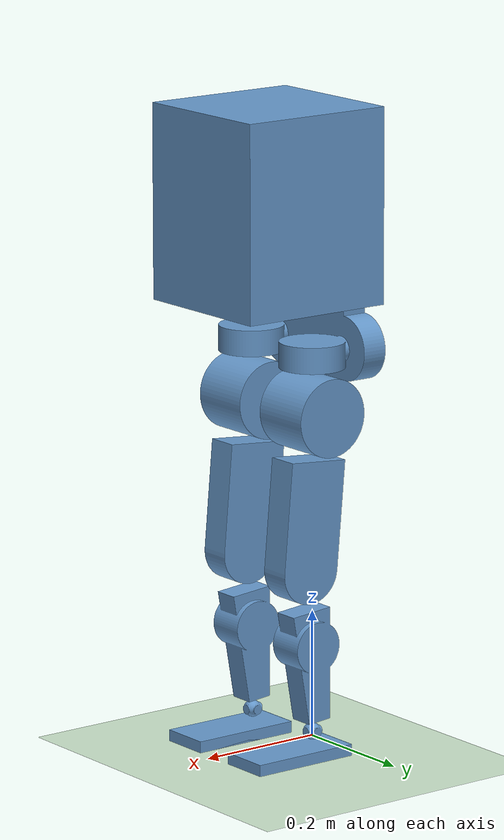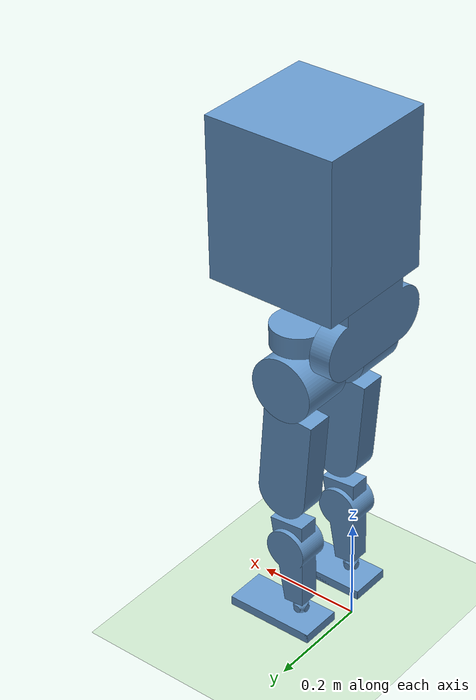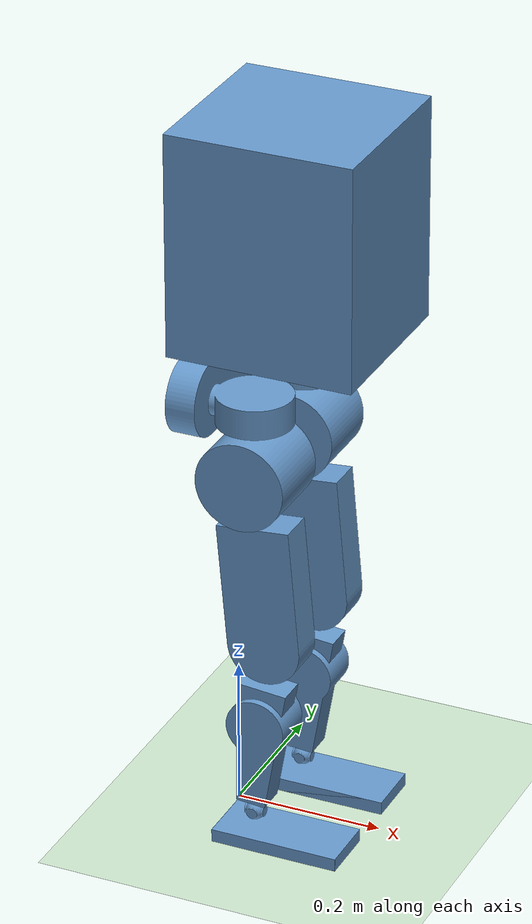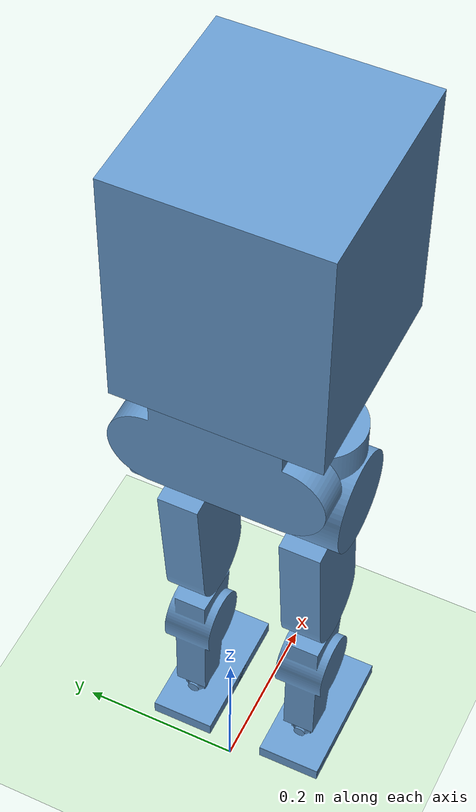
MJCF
<mujoco model="biped_schematics">
    <compiler angle="radian" meshdir="./mesh/" />
    <!-- njmax="500" This defines the maximum number of joints. It pre-allocates memory space to accommodate up to 500 joints. -->
    <!--  nconmax="100" Defines the maximum number of contact points that can exist concurrently. It pre-allocates memory space to accommodate up to 100 contact points.-->
    <size njmax="500" nconmax="100" />
     <!-- default attributes for elements within the scene or model. -->
    <default>
        <!-- Sets default attributes for geometries. -->
        <geom conaffinity="0" contype="1" type="mesh" density="1000" rgba="0.4 0.6 .8 1"/>
        <!-- Sets default attributes for joints. -->
        <joint armature="0" damping="1" limited="true" />
        <!-- Sets default attributes for motors. -->
        <motor ctrllimited="true" ctrlrange="-0.4 0.4"/>
        <position ctrllimited="true" ctrlrange="-1 1" kp="0.1"/>
    </default>
    <asset>
        <mesh name="base_link" file="base_link.stl" scale="0.001 0.001 0.001" />
        <mesh name="hip_2" file="hip_2.stl" scale="0.001 0.001 0.001" />
        <mesh name="hip_1" file="hip_1.stl" scale="0.001 0.001 0.001" />
        <mesh name="hip2_1" file="hip2_1.stl" scale="0.001 0.001 0.001" />
        <mesh name="hip2_2" file="hip2_2.stl" scale="0.001 0.001 0.001" />
        <mesh name="thigh_1" file="thigh_1.stl" scale="0.001 0.001 0.001" />
        <mesh name="thigh_2" file="thigh_2.stl" scale="0.001 0.001 0.001" />
        <mesh name="shank_1" file="shank_1.stl" scale="0.001 0.001 0.001" />
        <mesh name="shank_2" file="shank_2.stl" scale="0.001 0.001 0.001" />
        <mesh name="ankle_1" file="ankle_1.stl" scale="0.001 0.001 0.001" />
        <mesh name="ankle_2" file="ankle_2.stl" scale="0.001 0.001 0.001" />
        <mesh name="foot_1" file="foot_1.stl" scale="0.001 0.001 0.001" />
        <mesh name="foot_2" file="foot_2.stl" scale="0.001 0.001 0.001" />
        <mesh name="top_body_1" file="top_body_1.stl" scale="0.001 0.001 0.001" />
        <!-- 增加材质 -->
        <texture builtin="gradient" height="100" rgb1="1 1 1" rgb2="0 0 0" type="skybox" width="100"/>
        <texture builtin="flat" height="1278" mark="cross" markrgb="1 1 1" name="texgeom" random="0.01" rgb1="0.8 0.6 0.4" rgb2="0.8 0.6 0.4" type="cube" width="127"/>
        <texture builtin="checker" height="100" name="texplane" rgb1="0.13 0.5 0.13" rgb2="0.78 0.38 0.078" type="2d" width="100"/>
        <material name="MatPlane" reflectance="0.5" shininess="1" specular="1" texrepeat="60 60" texture="texplane"/>
        <material name="geom" texture="texgeom" texuniform="true"/>
    </asset>
    <worldbody>
    <!-- 修改整体机器人自由度 -->
        <light cutoff="100" diffuse="1 1 1" dir="-0 0 -1.3" directional="true" exponent="1" pos="0 0 1.3" specular=".1 .1 .1" castshadow="false"/>
        <geom conaffinity="1" condim="6" material="MatPlane" name="floor" pos="0 0 0" rgba="0.8 0.9 0.8 1" size="40 40 40" type="plane" friction="2 0.5 0.5"/>
        <body name="robot" pos="0 0 0.625">
            <camera name="track" mode="trackcom" pos="0 3 0.3" xyaxes="-1 0 0 0 0 1"/>
            <joint axis="1 0 0" type="slide" armature="0" limited="false" />
            <joint axis="0 1 0" type="slide" armature="0" limited="false" />
            <joint axis="0 0 1" type="slide" armature="0" limited="false" />
            <joint axis="1 0 0" type="hinge" armature="0" limited="false" />
            <joint axis="0 1 0" type="hinge" armature="0" limited="false" />
            <joint axis="0 0 1" type="hinge" armature="0" limited="false" />
            <geom type="mesh" contype="0" conaffinity="0" group="1" mesh="base_link" />
            <geom type="mesh" mesh="base_link" />
            <geom type="mesh" contype="0" conaffinity="0" group="1" mesh="top_body_1" />
            <geom type="mesh" mesh="top_body_1" />
            <body name="hip_2" pos="0 0.075 0">
                <inertial pos="0.0594432 0 0" quat="0 0.707107 0 0.707107" mass="1.90413" diaginertia="0.00194557 0.00125193 0.00119981" />
                <joint name="hip_x_left" pos="0 0 0" axis="1 0 0" limited="true" range="-0.785398 0.785398" damping="5" stiffness="10" armature="0.01" />
                <geom pos="0 -0.075 0" type="mesh" contype="0" conaffinity="0" group="1" mesh="hip_2" />
                <body name="hip2_1" pos="0.06 0 -0.02">
                    <inertial pos="0 0 -0.07" quat="0.5 0.5 -0.5 0.5" mass="4.50976" diaginertia="0.00683402 0.00683402 0.00615179" />
                    <joint name="hip_z_left" pos="0 0 0" axis="0 0 -1" limited="true" range="-0.5 0.5" damping="5" stiffness="10" armature="0.01" />
                    <geom pos="-0.06 -0.075 0.02" type="mesh" contype="0" conaffinity="0" group="1" mesh="hip2_1" />
                    <geom pos="-0.06 -0.075 0.02" type="mesh" mesh="hip2_1" />
                    <body name="thigh_1" pos="0 0 -0.07">
                        <inertial pos="0.0152464 0 -0.174267" quat="0.706434 -0.0308436 -0.0308436 0.706434" mass="1.10913" diaginertia="0.00499482 0.00434498 0.00111198" />
                        <joint name="hip_y_left" pos="0 0 0" axis="0 1 0" limited="true" range="-1.5708 1.0472" damping="5" stiffness="20" armature="0.01"/>
                        <geom pos="-0.06 -0.075 0.09" type="mesh" contype="0" conaffinity="0" group="1" mesh="thigh_1" />
                        <geom pos="-0.06 -0.075 0.09" type="mesh" mesh="thigh_1" />
                        <body name="shank_1" pos="0.020917 0 -0.239087">
                            <inertial pos="-0.0107979 0 -0.123425" quat="0.706434 0.0308436 0.0308436 0.706434" mass="2.59106" diaginertia="0.00309062 0.00282473 0.001746" />
                            <joint name="knee_left" pos="0 0 0" axis="0 1 0" limited="true" range="-0.5 1.5708" stiffness="1" armature="0.0060"/>
                            <geom pos="-0.080917 -0.075 0.329087" type="mesh" contype="0" conaffinity="0" group="1" mesh="shank_1" />
                            <body name="ankle_1" pos="-0.02266 0 -0.25901">
                                <inertial pos="-1.09986e-07 0 -4.047e-07" quat="0.5 0.5 -0.5 0.5" mass="0.0786273" diaginertia="5.95976e-06 5.54236e-06 5.54236e-06" />
                                <joint name="ankle_y_left" pos="0 0 0" axis="0 1 0" limited="true" range="-0.785398 0.785398" stiffness="4" armature="0.0008"/>
                                <geom pos="-0.058257 -0.075 0.588097" type="mesh" contype="0" conaffinity="0" group="1" mesh="ankle_1" />
                                <body name="foot_1" pos="0 0 0">
                                    <inertial pos="0.0424999 0 -0.0350004" quat="0 0.707107 0 0.707107" mass="0.4452" diaginertia="0.00137363 0.00116958 0.00027083" />
                                    <joint name="ankle_x_left" pos="0 0 0" axis="1 0 0" limited="true" range="-0.523599 0.523599" stiffness="1"  armature="0.0006"/>
                                    <geom pos="-0.058257 -0.075 0.588097" type="mesh" contype="0" conaffinity="0" group="1" mesh="foot_1" />
                                    <geom size="0.0875 0.04 0.015" pos="0.043 0 -0.035" type="box" />
                                </body>
                            </body>
                        </body>
                    </body>
                </body>
            </body>
            <body name="hip_1" pos="0 -0.075 0">
                <inertial pos="0.0594432 0 0" quat="0 0.707107 0 0.707107" mass="1.90413" diaginertia="0.00194557 0.00125193 0.00119981" />
                <joint name="hip_x_right" pos="0 0 0" axis="1 0 0" limited="true" range="-0.785398 0.785398" damping="5" stiffness="10" armature="0.01"/>
                <geom pos="0 0.075 0" type="mesh" contype="0" conaffinity="0" group="1" mesh="hip_1" />
                <body name="hip2_2" pos="0.06 0 -0.02">
                    <inertial pos="0 0 -0.07" quat="0.5 0.5 -0.5 0.5" mass="4.50976" diaginertia="0.00683402 0.00683402 0.00615179" />
                    <joint name="hip_z_right" pos="0 0 0" axis="0 0 -1" limited="true" range="-0.5 0.5" damping="5" stiffness="10" armature="0.01"/>
                    <geom pos="-0.06 0.075 0.02" type="mesh" contype="0" conaffinity="0" group="1" mesh="hip2_2" />
                    <geom pos="-0.06 0.075 0.02" type="mesh" mesh="hip2_2" />
                    <body name="thigh_2" pos="0 0 -0.07">
                        <inertial pos="0.0152464 0 -0.174267" quat="0.706434 -0.0308436 -0.0308436 0.706434" mass="1.10913" diaginertia="0.00499482 0.00434498 0.00111198" />
                        <joint name="hip_y_right" pos="0 0 0" axis="0 1 0" limited="true" range="-1.5708 1.0472" damping="5" stiffness="20" armature="0.01"/>
                        <geom pos="-0.06 0.075 0.09" type="mesh" contype="0" conaffinity="0" group="1" mesh="thigh_2" />
                        <geom pos="-0.06 0.075 0.09" type="mesh" mesh="thigh_2" />
                        <body name="shank_2" pos="0.020917 0 -0.239087">
                            <inertial pos="-0.0107979 0 -0.123425" quat="0.706434 0.0308436 0.0308436 0.706434" mass="2.59106" diaginertia="0.00309062 0.00282473 0.001746" />
                            <joint name="knee_right" pos="0 0 0" axis="0 1 0" limited="true" range="-0.5 1.5708" stiffness="1" armature="0.0060"/>
                            <geom pos="-0.080917 0.075 0.329087" type="mesh" contype="0" conaffinity="0" group="1" mesh="shank_2" />
                            <body name="ankle_2" pos="-0.02266 0 -0.25901">
                                <inertial pos="-1.09986e-07 0 -4.047e-07" quat="0.5 0.5 -0.5 0.5" mass="0.0786273" diaginertia="5.95976e-06 5.54236e-06 5.54236e-06" />
                                <joint name="ankle_y_right" pos="0 0 0" axis="0 1 0" limited="true" range="-0.785398 0.785398" stiffness="4" armature="0.0008"/>
                                <geom pos="-0.058257 0.075 0.588097" type="mesh" contype="0" conaffinity="0" group="1" mesh="ankle_2" />
                                <body name="foot_2" pos="0 0 0">
                                    <inertial pos="0.0424999 0 -0.0350004" quat="0 0.707107 0 0.707107" mass="0.4452" diaginertia="0.00137363 0.00116958 0.00027083" />
                                    <joint name="ankle_x_right" pos="0 0 0" axis="1 0 0" limited="true" range="-0.523599 0.523599" stiffness="1"  armature="0.0006"/>
                                    <geom pos="-0.058257 0.075 0.588097" type="mesh" contype="0" conaffinity="0" group="1" mesh="foot_2" />
                                    <geom size="0.0875 0.04 0.015" pos="0.043 0 -0.035" type="box" />
                                </body>
                            </body>
                        </body>
                    </body>
                </body>
            </body>
        </body>
    </worldbody>

<!-- 增加关节驱动 -->
    <actuator>
        <motor name="hip_x_left" joint="hip_x_left" gear="40"/>
        <motor name="hip_z_left" joint="hip_z_left" gear="40"/>
        <motor name="hip_y_left" joint="hip_y_left" gear="120"/>
        <motor name="knee_left" joint="knee_left" gear="80"/>
        <motor name="ankle_y_left" joint="ankle_y_left" gear="20"/>
        <motor name="ankle_x_left" joint="ankle_x_left" gear="20"/>

        <motor name="hip_x_right" joint="hip_x_right" gear="40"/>
        <motor name="hip_z_right" joint="hip_z_right" gear="40"/>
        <motor name="hip_y_right" joint="hip_y_right" gear="120"/>
        <motor name="knee_right" joint="knee_right" gear="80"/>
        <motor name="ankle_y_right" joint="ankle_y_right" gear="20"/>
        <motor name="ankle_x_right" joint="ankle_x_right" gear="20"/>
    </actuator>
</mujoco>
